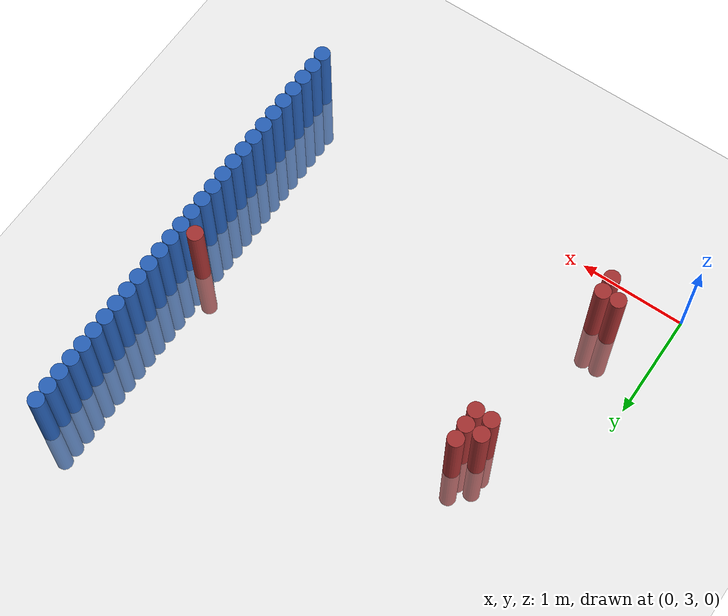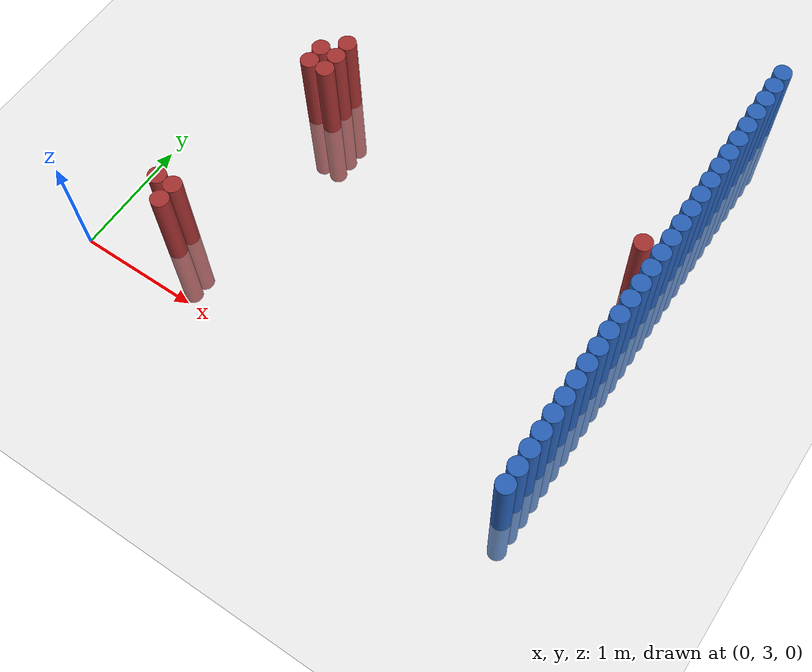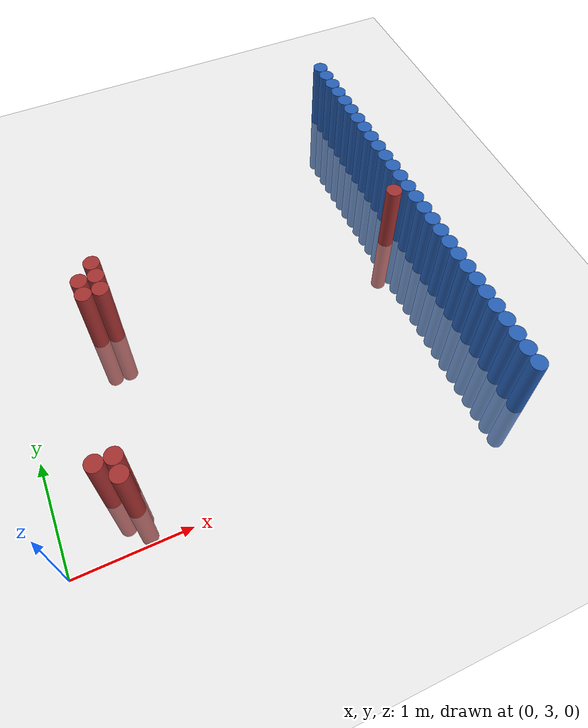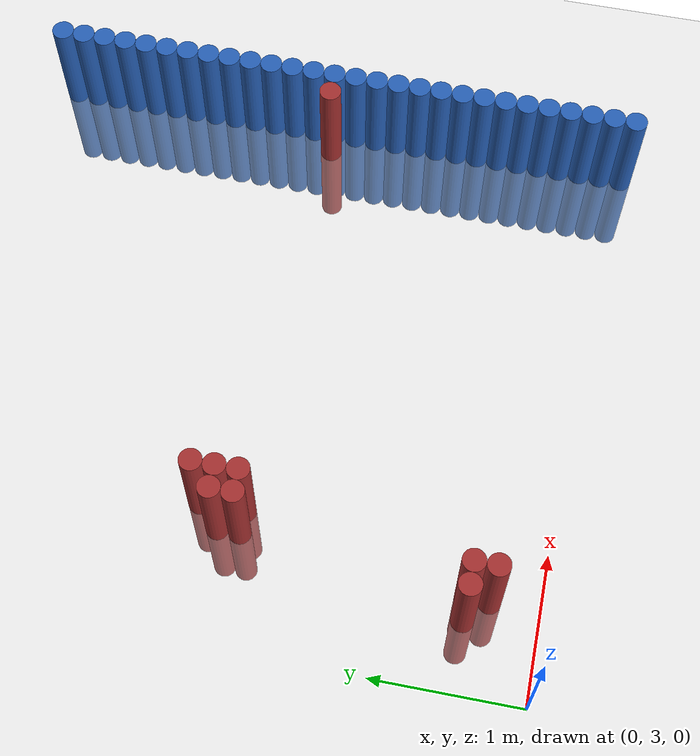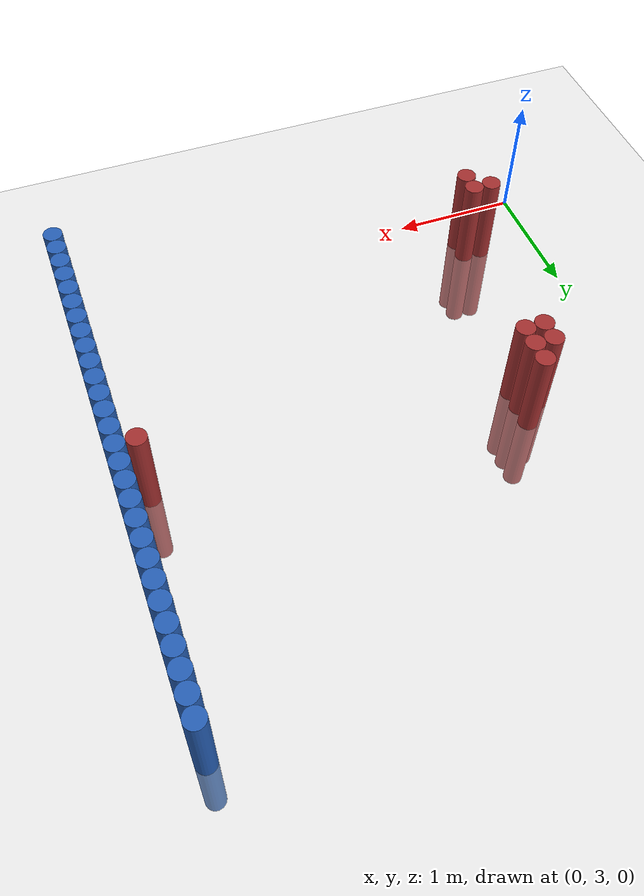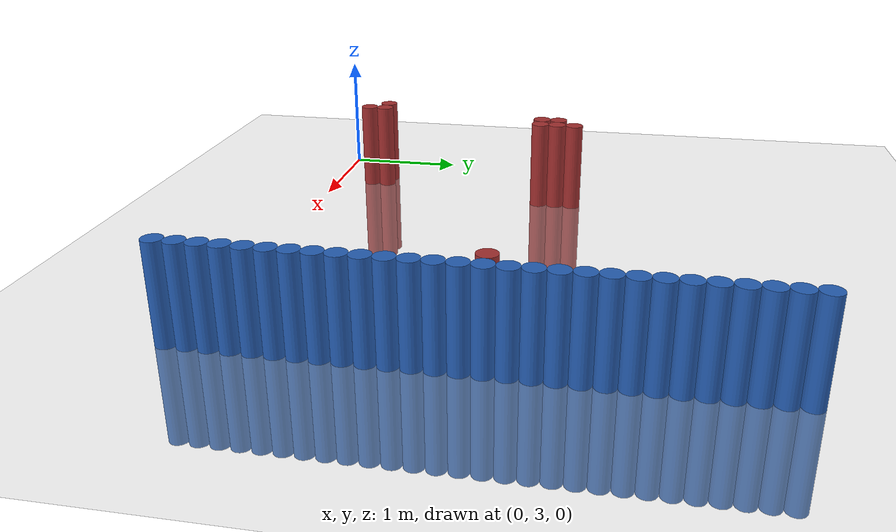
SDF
<sdf version="1.6">
 <world name="default">
  <model name="ground_plane">
   <static>1</static>
   <link name="link">
    <collision name="collision">
     <geometry><plane><normal>0 0 1</normal><size>100 100</size></plane></geometry>
     <surface><friction><ode><mu>100</mu><mu2>50</mu2></ode></friction></surface>
    </collision>
    <visual name="visual">
     <cast_shadows>0</cast_shadows>
     <geometry><plane><normal>0 0 1</normal><size>100 100</size></plane></geometry>
     <material>
      <script><uri>file://media/materials/scripts/gazebo.material</uri><name>Gazebo/Grey</name></script>
     </material>
    </visual>
   </link>
  </model>
  <model name="unit_cylinder_154">
   <static>1</static>
   <pose>3.925000 3.025000 0.000000 0.000000 0.000000 0.000000</pose>
   <link name="link">
    <inertial>
     <mass>1</mass>
     <inertia><ixx>0.145833</ixx><ixy>0</ixy><ixz>0</ixz><iyy>0.145833</iyy><iyz>0</iyz><izz>0.125</izz></inertia>
    </inertial>
    <collision name="collision">
     <geometry><cylinder><radius>0.075000</radius><length>1.5</length></cylinder></geometry>
    </collision>
    <visual name="visual">
     <geometry><cylinder><radius>0.075000</radius><length>1.5</length></cylinder></geometry>
     <material>
      <ambient>0.152000 0.379000 0.720000 1</ambient>
      <diffuse>0.152000 0.379000 0.720000 1</diffuse>
     </material>
     <material>
      <script><name>Gazebo/Grey</name><uri>file://media/materials/scripts/gazebo.material</uri></script>
     </material>
    </visual>
   </link>
  </model>
  <model name="unit_cylinder_156">
   <static>1</static>
   <pose>3.925000 3.175000 0.000000 0.000000 0.000000 0.000000</pose>
   <link name="link">
    <inertial>
     <mass>1</mass>
     <inertia><ixx>0.145833</ixx><ixy>0</ixy><ixz>0</ixz><iyy>0.145833</iyy><iyz>0</iyz><izz>0.125</izz></inertia>
    </inertial>
    <collision name="collision">
     <geometry><cylinder><radius>0.075000</radius><length>1.5</length></cylinder></geometry>
    </collision>
    <visual name="visual">
     <geometry><cylinder><radius>0.075000</radius><length>1.5</length></cylinder></geometry>
     <material>
      <ambient>0.152000 0.379000 0.720000 1</ambient>
      <diffuse>0.152000 0.379000 0.720000 1</diffuse>
     </material>
     <material>
      <script><name>Gazebo/Grey</name><uri>file://media/materials/scripts/gazebo.material</uri></script>
     </material>
    </visual>
   </link>
  </model>
  <model name="unit_cylinder_158">
   <static>1</static>
   <pose>3.925000 3.325000 0.000000 0.000000 0.000000 0.000000</pose>
   <link name="link">
    <inertial>
     <mass>1</mass>
     <inertia><ixx>0.145833</ixx><ixy>0</ixy><ixz>0</ixz><iyy>0.145833</iyy><iyz>0</iyz><izz>0.125</izz></inertia>
    </inertial>
    <collision name="collision">
     <geometry><cylinder><radius>0.075000</radius><length>1.5</length></cylinder></geometry>
    </collision>
    <visual name="visual">
     <geometry><cylinder><radius>0.075000</radius><length>1.5</length></cylinder></geometry>
     <material>
      <ambient>0.152000 0.379000 0.720000 1</ambient>
      <diffuse>0.152000 0.379000 0.720000 1</diffuse>
     </material>
     <material>
      <script><name>Gazebo/Grey</name><uri>file://media/materials/scripts/gazebo.material</uri></script>
     </material>
    </visual>
   </link>
  </model>
  <model name="unit_cylinder_160">
   <static>1</static>
   <pose>3.925000 3.475000 0.000000 0.000000 0.000000 0.000000</pose>
   <link name="link">
    <inertial>
     <mass>1</mass>
     <inertia><ixx>0.145833</ixx><ixy>0</ixy><ixz>0</ixz><iyy>0.145833</iyy><iyz>0</iyz><izz>0.125</izz></inertia>
    </inertial>
    <collision name="collision">
     <geometry><cylinder><radius>0.075000</radius><length>1.5</length></cylinder></geometry>
    </collision>
    <visual name="visual">
     <geometry><cylinder><radius>0.075000</radius><length>1.5</length></cylinder></geometry>
     <material>
      <ambient>0.152000 0.379000 0.720000 1</ambient>
      <diffuse>0.152000 0.379000 0.720000 1</diffuse>
     </material>
     <material>
      <script><name>Gazebo/Grey</name><uri>file://media/materials/scripts/gazebo.material</uri></script>
     </material>
    </visual>
   </link>
  </model>
  <model name="unit_cylinder_162">
   <static>1</static>
   <pose>3.925000 3.625000 0.000000 0.000000 0.000000 0.000000</pose>
   <link name="link">
    <inertial>
     <mass>1</mass>
     <inertia><ixx>0.145833</ixx><ixy>0</ixy><ixz>0</ixz><iyy>0.145833</iyy><iyz>0</iyz><izz>0.125</izz></inertia>
    </inertial>
    <collision name="collision">
     <geometry><cylinder><radius>0.075000</radius><length>1.5</length></cylinder></geometry>
    </collision>
    <visual name="visual">
     <geometry><cylinder><radius>0.075000</radius><length>1.5</length></cylinder></geometry>
     <material>
      <ambient>0.152000 0.379000 0.720000 1</ambient>
      <diffuse>0.152000 0.379000 0.720000 1</diffuse>
     </material>
     <material>
      <script><name>Gazebo/Grey</name><uri>file://media/materials/scripts/gazebo.material</uri></script>
     </material>
    </visual>
   </link>
  </model>
  <model name="unit_cylinder_164">
   <static>1</static>
   <pose>3.925000 3.775000 0.000000 0.000000 0.000000 0.000000</pose>
   <link name="link">
    <inertial>
     <mass>1</mass>
     <inertia><ixx>0.145833</ixx><ixy>0</ixy><ixz>0</ixz><iyy>0.145833</iyy><iyz>0</iyz><izz>0.125</izz></inertia>
    </inertial>
    <collision name="collision">
     <geometry><cylinder><radius>0.075000</radius><length>1.5</length></cylinder></geometry>
    </collision>
    <visual name="visual">
     <geometry><cylinder><radius>0.075000</radius><length>1.5</length></cylinder></geometry>
     <material>
      <ambient>0.152000 0.379000 0.720000 1</ambient>
      <diffuse>0.152000 0.379000 0.720000 1</diffuse>
     </material>
     <material>
      <script><name>Gazebo/Grey</name><uri>file://media/materials/scripts/gazebo.material</uri></script>
     </material>
    </visual>
   </link>
  </model>
  <model name="unit_cylinder_166">
   <static>1</static>
   <pose>3.925000 3.925000 0.000000 0.000000 0.000000 0.000000</pose>
   <link name="link">
    <inertial>
     <mass>1</mass>
     <inertia><ixx>0.145833</ixx><ixy>0</ixy><ixz>0</ixz><iyy>0.145833</iyy><iyz>0</iyz><izz>0.125</izz></inertia>
    </inertial>
    <collision name="collision">
     <geometry><cylinder><radius>0.075000</radius><length>1.5</length></cylinder></geometry>
    </collision>
    <visual name="visual">
     <geometry><cylinder><radius>0.075000</radius><length>1.5</length></cylinder></geometry>
     <material>
      <ambient>0.152000 0.379000 0.720000 1</ambient>
      <diffuse>0.152000 0.379000 0.720000 1</diffuse>
     </material>
     <material>
      <script><name>Gazebo/Grey</name><uri>file://media/materials/scripts/gazebo.material</uri></script>
     </material>
    </visual>
   </link>
  </model>
  <model name="unit_cylinder_168">
   <static>1</static>
   <pose>3.925000 4.075000 0.000000 0.000000 0.000000 0.000000</pose>
   <link name="link">
    <inertial>
     <mass>1</mass>
     <inertia><ixx>0.145833</ixx><ixy>0</ixy><ixz>0</ixz><iyy>0.145833</iyy><iyz>0</iyz><izz>0.125</izz></inertia>
    </inertial>
    <collision name="collision">
     <geometry><cylinder><radius>0.075000</radius><length>1.5</length></cylinder></geometry>
    </collision>
    <visual name="visual">
     <geometry><cylinder><radius>0.075000</radius><length>1.5</length></cylinder></geometry>
     <material>
      <ambient>0.152000 0.379000 0.720000 1</ambient>
      <diffuse>0.152000 0.379000 0.720000 1</diffuse>
     </material>
     <material>
      <script><name>Gazebo/Grey</name><uri>file://media/materials/scripts/gazebo.material</uri></script>
     </material>
    </visual>
   </link>
  </model>
  <model name="unit_cylinder_170">
   <static>1</static>
   <pose>3.925000 4.225000 0.000000 0.000000 0.000000 0.000000</pose>
   <link name="link">
    <inertial>
     <mass>1</mass>
     <inertia><ixx>0.145833</ixx><ixy>0</ixy><ixz>0</ixz><iyy>0.145833</iyy><iyz>0</iyz><izz>0.125</izz></inertia>
    </inertial>
    <collision name="collision">
     <geometry><cylinder><radius>0.075000</radius><length>1.5</length></cylinder></geometry>
    </collision>
    <visual name="visual">
     <geometry><cylinder><radius>0.075000</radius><length>1.5</length></cylinder></geometry>
     <material>
      <ambient>0.152000 0.379000 0.720000 1</ambient>
      <diffuse>0.152000 0.379000 0.720000 1</diffuse>
     </material>
     <material>
      <script><name>Gazebo/Grey</name><uri>file://media/materials/scripts/gazebo.material</uri></script>
     </material>
    </visual>
   </link>
  </model>
  <model name="unit_cylinder_172">
   <static>1</static>
   <pose>3.925000 4.375000 0.000000 0.000000 0.000000 0.000000</pose>
   <link name="link">
    <inertial>
     <mass>1</mass>
     <inertia><ixx>0.145833</ixx><ixy>0</ixy><ixz>0</ixz><iyy>0.145833</iyy><iyz>0</iyz><izz>0.125</izz></inertia>
    </inertial>
    <collision name="collision">
     <geometry><cylinder><radius>0.075000</radius><length>1.5</length></cylinder></geometry>
    </collision>
    <visual name="visual">
     <geometry><cylinder><radius>0.075000</radius><length>1.5</length></cylinder></geometry>
     <material>
      <ambient>0.152000 0.379000 0.720000 1</ambient>
      <diffuse>0.152000 0.379000 0.720000 1</diffuse>
     </material>
     <material>
      <script><name>Gazebo/Grey</name><uri>file://media/materials/scripts/gazebo.material</uri></script>
     </material>
    </visual>
   </link>
  </model>
  <model name="unit_cylinder_174">
   <static>1</static>
   <pose>3.925000 4.525000 0.000000 0.000000 0.000000 0.000000</pose>
   <link name="link">
    <inertial>
     <mass>1</mass>
     <inertia><ixx>0.145833</ixx><ixy>0</ixy><ixz>0</ixz><iyy>0.145833</iyy><iyz>0</iyz><izz>0.125</izz></inertia>
    </inertial>
    <collision name="collision">
     <geometry><cylinder><radius>0.075000</radius><length>1.5</length></cylinder></geometry>
    </collision>
    <visual name="visual">
     <geometry><cylinder><radius>0.075000</radius><length>1.5</length></cylinder></geometry>
     <material>
      <ambient>0.152000 0.379000 0.720000 1</ambient>
      <diffuse>0.152000 0.379000 0.720000 1</diffuse>
     </material>
     <material>
      <script><name>Gazebo/Grey</name><uri>file://media/materials/scripts/gazebo.material</uri></script>
     </material>
    </visual>
   </link>
  </model>
  <model name="unit_cylinder_176">
   <static>1</static>
   <pose>3.925000 4.675000 0.000000 0.000000 0.000000 0.000000</pose>
   <link name="link">
    <inertial>
     <mass>1</mass>
     <inertia><ixx>0.145833</ixx><ixy>0</ixy><ixz>0</ixz><iyy>0.145833</iyy><iyz>0</iyz><izz>0.125</izz></inertia>
    </inertial>
    <collision name="collision">
     <geometry><cylinder><radius>0.075000</radius><length>1.5</length></cylinder></geometry>
    </collision>
    <visual name="visual">
     <geometry><cylinder><radius>0.075000</radius><length>1.5</length></cylinder></geometry>
     <material>
      <ambient>0.152000 0.379000 0.720000 1</ambient>
      <diffuse>0.152000 0.379000 0.720000 1</diffuse>
     </material>
     <material>
      <script><name>Gazebo/Grey</name><uri>file://media/materials/scripts/gazebo.material</uri></script>
     </material>
    </visual>
   </link>
  </model>
  <model name="unit_cylinder_178">
   <static>1</static>
   <pose>3.925000 4.825000 0.000000 0.000000 0.000000 0.000000</pose>
   <link name="link">
    <inertial>
     <mass>1</mass>
     <inertia><ixx>0.145833</ixx><ixy>0</ixy><ixz>0</ixz><iyy>0.145833</iyy><iyz>0</iyz><izz>0.125</izz></inertia>
    </inertial>
    <collision name="collision">
     <geometry><cylinder><radius>0.075000</radius><length>1.5</length></cylinder></geometry>
    </collision>
    <visual name="visual">
     <geometry><cylinder><radius>0.075000</radius><length>1.5</length></cylinder></geometry>
     <material>
      <ambient>0.152000 0.379000 0.720000 1</ambient>
      <diffuse>0.152000 0.379000 0.720000 1</diffuse>
     </material>
     <material>
      <script><name>Gazebo/Grey</name><uri>file://media/materials/scripts/gazebo.material</uri></script>
     </material>
    </visual>
   </link>
  </model>
  <model name="unit_cylinder_180">
   <static>1</static>
   <pose>3.925000 4.975000 0.000000 0.000000 0.000000 0.000000</pose>
   <link name="link">
    <inertial>
     <mass>1</mass>
     <inertia><ixx>0.145833</ixx><ixy>0</ixy><ixz>0</ixz><iyy>0.145833</iyy><iyz>0</iyz><izz>0.125</izz></inertia>
    </inertial>
    <collision name="collision">
     <geometry><cylinder><radius>0.075000</radius><length>1.5</length></cylinder></geometry>
    </collision>
    <visual name="visual">
     <geometry><cylinder><radius>0.075000</radius><length>1.5</length></cylinder></geometry>
     <material>
      <ambient>0.152000 0.379000 0.720000 1</ambient>
      <diffuse>0.152000 0.379000 0.720000 1</diffuse>
     </material>
     <material>
      <script><name>Gazebo/Grey</name><uri>file://media/materials/scripts/gazebo.material</uri></script>
     </material>
    </visual>
   </link>
  </model>
  <model name="unit_cylinder_182">
   <static>1</static>
   <pose>3.925000 5.125000 0.000000 0.000000 0.000000 0.000000</pose>
   <link name="link">
    <inertial>
     <mass>1</mass>
     <inertia><ixx>0.145833</ixx><ixy>0</ixy><ixz>0</ixz><iyy>0.145833</iyy><iyz>0</iyz><izz>0.125</izz></inertia>
    </inertial>
    <collision name="collision">
     <geometry><cylinder><radius>0.075000</radius><length>1.5</length></cylinder></geometry>
    </collision>
    <visual name="visual">
     <geometry><cylinder><radius>0.075000</radius><length>1.5</length></cylinder></geometry>
     <material>
      <ambient>0.152000 0.379000 0.720000 1</ambient>
      <diffuse>0.152000 0.379000 0.720000 1</diffuse>
     </material>
     <material>
      <script><name>Gazebo/Grey</name><uri>file://media/materials/scripts/gazebo.material</uri></script>
     </material>
    </visual>
   </link>
  </model>
  <model name="unit_cylinder_184">
   <static>1</static>
   <pose>3.925000 5.275000 0.000000 0.000000 0.000000 0.000000</pose>
   <link name="link">
    <inertial>
     <mass>1</mass>
     <inertia><ixx>0.145833</ixx><ixy>0</ixy><ixz>0</ixz><iyy>0.145833</iyy><iyz>0</iyz><izz>0.125</izz></inertia>
    </inertial>
    <collision name="collision">
     <geometry><cylinder><radius>0.075000</radius><length>1.5</length></cylinder></geometry>
    </collision>
    <visual name="visual">
     <geometry><cylinder><radius>0.075000</radius><length>1.5</length></cylinder></geometry>
     <material>
      <ambient>0.152000 0.379000 0.720000 1</ambient>
      <diffuse>0.152000 0.379000 0.720000 1</diffuse>
     </material>
     <material>
      <script><name>Gazebo/Grey</name><uri>file://media/materials/scripts/gazebo.material</uri></script>
     </material>
    </visual>
   </link>
  </model>
  <model name="unit_cylinder_186">
   <static>1</static>
   <pose>3.925000 5.425000 0.000000 0.000000 0.000000 0.000000</pose>
   <link name="link">
    <inertial>
     <mass>1</mass>
     <inertia><ixx>0.145833</ixx><ixy>0</ixy><ixz>0</ixz><iyy>0.145833</iyy><iyz>0</iyz><izz>0.125</izz></inertia>
    </inertial>
    <collision name="collision">
     <geometry><cylinder><radius>0.075000</radius><length>1.5</length></cylinder></geometry>
    </collision>
    <visual name="visual">
     <geometry><cylinder><radius>0.075000</radius><length>1.5</length></cylinder></geometry>
     <material>
      <ambient>0.152000 0.379000 0.720000 1</ambient>
      <diffuse>0.152000 0.379000 0.720000 1</diffuse>
     </material>
     <material>
      <script><name>Gazebo/Grey</name><uri>file://media/materials/scripts/gazebo.material</uri></script>
     </material>
    </visual>
   </link>
  </model>
  <model name="unit_cylinder_188">
   <static>1</static>
   <pose>3.925000 5.575000 0.000000 0.000000 0.000000 0.000000</pose>
   <link name="link">
    <inertial>
     <mass>1</mass>
     <inertia><ixx>0.145833</ixx><ixy>0</ixy><ixz>0</ixz><iyy>0.145833</iyy><iyz>0</iyz><izz>0.125</izz></inertia>
    </inertial>
    <collision name="collision">
     <geometry><cylinder><radius>0.075000</radius><length>1.5</length></cylinder></geometry>
    </collision>
    <visual name="visual">
     <geometry><cylinder><radius>0.075000</radius><length>1.5</length></cylinder></geometry>
     <material>
      <ambient>0.152000 0.379000 0.720000 1</ambient>
      <diffuse>0.152000 0.379000 0.720000 1</diffuse>
     </material>
     <material>
      <script><name>Gazebo/Grey</name><uri>file://media/materials/scripts/gazebo.material</uri></script>
     </material>
    </visual>
   </link>
  </model>
  <model name="unit_cylinder_190">
   <static>1</static>
   <pose>3.925000 5.725000 0.000000 0.000000 0.000000 0.000000</pose>
   <link name="link">
    <inertial>
     <mass>1</mass>
     <inertia><ixx>0.145833</ixx><ixy>0</ixy><ixz>0</ixz><iyy>0.145833</iyy><iyz>0</iyz><izz>0.125</izz></inertia>
    </inertial>
    <collision name="collision">
     <geometry><cylinder><radius>0.075000</radius><length>1.5</length></cylinder></geometry>
    </collision>
    <visual name="visual">
     <geometry><cylinder><radius>0.075000</radius><length>1.5</length></cylinder></geometry>
     <material>
      <ambient>0.152000 0.379000 0.720000 1</ambient>
      <diffuse>0.152000 0.379000 0.720000 1</diffuse>
     </material>
     <material>
      <script><name>Gazebo/Grey</name><uri>file://media/materials/scripts/gazebo.material</uri></script>
     </material>
    </visual>
   </link>
  </model>
  <model name="unit_cylinder_192">
   <static>1</static>
   <pose>3.925000 5.875000 0.000000 0.000000 0.000000 0.000000</pose>
   <link name="link">
    <inertial>
     <mass>1</mass>
     <inertia><ixx>0.145833</ixx><ixy>0</ixy><ixz>0</ixz><iyy>0.145833</iyy><iyz>0</iyz><izz>0.125</izz></inertia>
    </inertial>
    <collision name="collision">
     <geometry><cylinder><radius>0.075000</radius><length>1.5</length></cylinder></geometry>
    </collision>
    <visual name="visual">
     <geometry><cylinder><radius>0.075000</radius><length>1.5</length></cylinder></geometry>
     <material>
      <ambient>0.152000 0.379000 0.720000 1</ambient>
      <diffuse>0.152000 0.379000 0.720000 1</diffuse>
     </material>
     <material>
      <script><name>Gazebo/Grey</name><uri>file://media/materials/scripts/gazebo.material</uri></script>
     </material>
    </visual>
   </link>
  </model>
  <model name="unit_cylinder_194">
   <static>1</static>
   <pose>3.925000 6.025000 0.000000 0.000000 0.000000 0.000000</pose>
   <link name="link">
    <inertial>
     <mass>1</mass>
     <inertia><ixx>0.145833</ixx><ixy>0</ixy><ixz>0</ixz><iyy>0.145833</iyy><iyz>0</iyz><izz>0.125</izz></inertia>
    </inertial>
    <collision name="collision">
     <geometry><cylinder><radius>0.075000</radius><length>1.5</length></cylinder></geometry>
    </collision>
    <visual name="visual">
     <geometry><cylinder><radius>0.075000</radius><length>1.5</length></cylinder></geometry>
     <material>
      <ambient>0.152000 0.379000 0.720000 1</ambient>
      <diffuse>0.152000 0.379000 0.720000 1</diffuse>
     </material>
     <material>
      <script><name>Gazebo/Grey</name><uri>file://media/materials/scripts/gazebo.material</uri></script>
     </material>
    </visual>
   </link>
  </model>
  <model name="unit_cylinder_196">
   <static>1</static>
   <pose>3.925000 6.175000 0.000000 0.000000 0.000000 0.000000</pose>
   <link name="link">
    <inertial>
     <mass>1</mass>
     <inertia><ixx>0.145833</ixx><ixy>0</ixy><ixz>0</ixz><iyy>0.145833</iyy><iyz>0</iyz><izz>0.125</izz></inertia>
    </inertial>
    <collision name="collision">
     <geometry><cylinder><radius>0.075000</radius><length>1.5</length></cylinder></geometry>
    </collision>
    <visual name="visual">
     <geometry><cylinder><radius>0.075000</radius><length>1.5</length></cylinder></geometry>
     <material>
      <ambient>0.152000 0.379000 0.720000 1</ambient>
      <diffuse>0.152000 0.379000 0.720000 1</diffuse>
     </material>
     <material>
      <script><name>Gazebo/Grey</name><uri>file://media/materials/scripts/gazebo.material</uri></script>
     </material>
    </visual>
   </link>
  </model>
  <model name="unit_cylinder_198">
   <static>1</static>
   <pose>3.925000 6.325000 0.000000 0.000000 0.000000 0.000000</pose>
   <link name="link">
    <inertial>
     <mass>1</mass>
     <inertia><ixx>0.145833</ixx><ixy>0</ixy><ixz>0</ixz><iyy>0.145833</iyy><iyz>0</iyz><izz>0.125</izz></inertia>
    </inertial>
    <collision name="collision">
     <geometry><cylinder><radius>0.075000</radius><length>1.5</length></cylinder></geometry>
    </collision>
    <visual name="visual">
     <geometry><cylinder><radius>0.075000</radius><length>1.5</length></cylinder></geometry>
     <material>
      <ambient>0.152000 0.379000 0.720000 1</ambient>
      <diffuse>0.152000 0.379000 0.720000 1</diffuse>
     </material>
     <material>
      <script><name>Gazebo/Grey</name><uri>file://media/materials/scripts/gazebo.material</uri></script>
     </material>
    </visual>
   </link>
  </model>
  <model name="unit_cylinder_200">
   <static>1</static>
   <pose>3.925000 6.475000 0.000000 0.000000 0.000000 0.000000</pose>
   <link name="link">
    <inertial>
     <mass>1</mass>
     <inertia><ixx>0.145833</ixx><ixy>0</ixy><ixz>0</ixz><iyy>0.145833</iyy><iyz>0</iyz><izz>0.125</izz></inertia>
    </inertial>
    <collision name="collision">
     <geometry><cylinder><radius>0.075000</radius><length>1.5</length></cylinder></geometry>
    </collision>
    <visual name="visual">
     <geometry><cylinder><radius>0.075000</radius><length>1.5</length></cylinder></geometry>
     <material>
      <ambient>0.152000 0.379000 0.720000 1</ambient>
      <diffuse>0.152000 0.379000 0.720000 1</diffuse>
     </material>
     <material>
      <script><name>Gazebo/Grey</name><uri>file://media/materials/scripts/gazebo.material</uri></script>
     </material>
    </visual>
   </link>
  </model>
  <model name="unit_cylinder_202">
   <static>1</static>
   <pose>3.925000 6.625000 0.000000 0.000000 0.000000 0.000000</pose>
   <link name="link">
    <inertial>
     <mass>1</mass>
     <inertia><ixx>0.145833</ixx><ixy>0</ixy><ixz>0</ixz><iyy>0.145833</iyy><iyz>0</iyz><izz>0.125</izz></inertia>
    </inertial>
    <collision name="collision">
     <geometry><cylinder><radius>0.075000</radius><length>1.5</length></cylinder></geometry>
    </collision>
    <visual name="visual">
     <geometry><cylinder><radius>0.075000</radius><length>1.5</length></cylinder></geometry>
     <material>
      <ambient>0.152000 0.379000 0.720000 1</ambient>
      <diffuse>0.152000 0.379000 0.720000 1</diffuse>
     </material>
     <material>
      <script><name>Gazebo/Grey</name><uri>file://media/materials/scripts/gazebo.material</uri></script>
     </material>
    </visual>
   </link>
  </model>
  <model name="unit_cylinder_204">
   <static>1</static>
   <pose>3.925000 6.775000 0.000000 0.000000 0.000000 0.000000</pose>
   <link name="link">
    <inertial>
     <mass>1</mass>
     <inertia><ixx>0.145833</ixx><ixy>0</ixy><ixz>0</ixz><iyy>0.145833</iyy><iyz>0</iyz><izz>0.125</izz></inertia>
    </inertial>
    <collision name="collision">
     <geometry><cylinder><radius>0.075000</radius><length>1.5</length></cylinder></geometry>
    </collision>
    <visual name="visual">
     <geometry><cylinder><radius>0.075000</radius><length>1.5</length></cylinder></geometry>
     <material>
      <ambient>0.152000 0.379000 0.720000 1</ambient>
      <diffuse>0.152000 0.379000 0.720000 1</diffuse>
     </material>
     <material>
      <script><name>Gazebo/Grey</name><uri>file://media/materials/scripts/gazebo.material</uri></script>
     </material>
    </visual>
   </link>
  </model>
  <model name="unit_cylinder_206">
   <static>1</static>
   <pose>3.925000 6.925000 0.000000 0.000000 0.000000 0.000000</pose>
   <link name="link">
    <inertial>
     <mass>1</mass>
     <inertia><ixx>0.145833</ixx><ixy>0</ixy><ixz>0</ixz><iyy>0.145833</iyy><iyz>0</iyz><izz>0.125</izz></inertia>
    </inertial>
    <collision name="collision">
     <geometry><cylinder><radius>0.075000</radius><length>1.5</length></cylinder></geometry>
    </collision>
    <visual name="visual">
     <geometry><cylinder><radius>0.075000</radius><length>1.5</length></cylinder></geometry>
     <material>
      <ambient>0.152000 0.379000 0.720000 1</ambient>
      <diffuse>0.152000 0.379000 0.720000 1</diffuse>
     </material>
     <material>
      <script><name>Gazebo/Grey</name><uri>file://media/materials/scripts/gazebo.material</uri></script>
     </material>
    </visual>
   </link>
  </model>
  <model name="unit_cylinder_297">
   <static>1</static>
   <pose>0.475000 3.475000 0.000000 0.000000 0.000000 0.000000</pose>
   <link name="link">
    <inertial>
     <mass>1</mass>
     <inertia><ixx>0.145833</ixx><ixy>0</ixy><ixz>0</ixz><iyy>0.145833</iyy><iyz>0</iyz><izz>0.125</izz></inertia>
    </inertial>
    <collision name="collision">
     <geometry><cylinder><radius>0.075000</radius><length>1.5</length></cylinder></geometry>
    </collision>
    <visual name="visual">
     <geometry><cylinder><radius>0.075000</radius><length>1.5</length></cylinder></geometry>
     <material>
      <ambient>0.648000 0.192000 0.192000 1</ambient>
      <diffuse>0.648000 0.192000 0.192000 1</diffuse>
     </material>
     <material>
      <script><name>Gazebo/Grey</name><uri>file://media/materials/scripts/gazebo.material</uri></script>
     </material>
    </visual>
   </link>
  </model>
  <model name="unit_cylinder_298">
   <static>1</static>
   <pose>0.625000 3.325000 0.000000 0.000000 0.000000 0.000000</pose>
   <link name="link">
    <inertial>
     <mass>1</mass>
     <inertia><ixx>0.145833</ixx><ixy>0</ixy><ixz>0</ixz><iyy>0.145833</iyy><iyz>0</iyz><izz>0.125</izz></inertia>
    </inertial>
    <collision name="collision">
     <geometry><cylinder><radius>0.075000</radius><length>1.5</length></cylinder></geometry>
    </collision>
    <visual name="visual">
     <geometry><cylinder><radius>0.075000</radius><length>1.5</length></cylinder></geometry>
     <material>
      <ambient>0.648000 0.192000 0.192000 1</ambient>
      <diffuse>0.648000 0.192000 0.192000 1</diffuse>
     </material>
     <material>
      <script><name>Gazebo/Grey</name><uri>file://media/materials/scripts/gazebo.material</uri></script>
     </material>
    </visual>
   </link>
  </model>
  <model name="unit_cylinder_299">
   <static>1</static>
   <pose>0.625000 3.475000 0.000000 0.000000 0.000000 0.000000</pose>
   <link name="link">
    <inertial>
     <mass>1</mass>
     <inertia><ixx>0.145833</ixx><ixy>0</ixy><ixz>0</ixz><iyy>0.145833</iyy><iyz>0</iyz><izz>0.125</izz></inertia>
    </inertial>
    <collision name="collision">
     <geometry><cylinder><radius>0.075000</radius><length>1.5</length></cylinder></geometry>
    </collision>
    <visual name="visual">
     <geometry><cylinder><radius>0.075000</radius><length>1.5</length></cylinder></geometry>
     <material>
      <ambient>0.648000 0.192000 0.192000 1</ambient>
      <diffuse>0.648000 0.192000 0.192000 1</diffuse>
     </material>
     <material>
      <script><name>Gazebo/Grey</name><uri>file://media/materials/scripts/gazebo.material</uri></script>
     </material>
    </visual>
   </link>
  </model>
  <model name="unit_cylinder_300">
   <static>1</static>
   <pose>0.775000 4.975000 0.000000 0.000000 0.000000 0.000000</pose>
   <link name="link">
    <inertial>
     <mass>1</mass>
     <inertia><ixx>0.145833</ixx><ixy>0</ixy><ixz>0</ixz><iyy>0.145833</iyy><iyz>0</iyz><izz>0.125</izz></inertia>
    </inertial>
    <collision name="collision">
     <geometry><cylinder><radius>0.075000</radius><length>1.5</length></cylinder></geometry>
    </collision>
    <visual name="visual">
     <geometry><cylinder><radius>0.075000</radius><length>1.5</length></cylinder></geometry>
     <material>
      <ambient>0.648000 0.192000 0.192000 1</ambient>
      <diffuse>0.648000 0.192000 0.192000 1</diffuse>
     </material>
     <material>
      <script><name>Gazebo/Grey</name><uri>file://media/materials/scripts/gazebo.material</uri></script>
     </material>
    </visual>
   </link>
  </model>
  <model name="unit_cylinder_301">
   <static>1</static>
   <pose>0.775000 5.125000 0.000000 0.000000 0.000000 0.000000</pose>
   <link name="link">
    <inertial>
     <mass>1</mass>
     <inertia><ixx>0.145833</ixx><ixy>0</ixy><ixz>0</ixz><iyy>0.145833</iyy><iyz>0</iyz><izz>0.125</izz></inertia>
    </inertial>
    <collision name="collision">
     <geometry><cylinder><radius>0.075000</radius><length>1.5</length></cylinder></geometry>
    </collision>
    <visual name="visual">
     <geometry><cylinder><radius>0.075000</radius><length>1.5</length></cylinder></geometry>
     <material>
      <ambient>0.648000 0.192000 0.192000 1</ambient>
      <diffuse>0.648000 0.192000 0.192000 1</diffuse>
     </material>
     <material>
      <script><name>Gazebo/Grey</name><uri>file://media/materials/scripts/gazebo.material</uri></script>
     </material>
    </visual>
   </link>
  </model>
  <model name="unit_cylinder_302">
   <static>1</static>
   <pose>0.925000 4.975000 0.000000 0.000000 0.000000 0.000000</pose>
   <link name="link">
    <inertial>
     <mass>1</mass>
     <inertia><ixx>0.145833</ixx><ixy>0</ixy><ixz>0</ixz><iyy>0.145833</iyy><iyz>0</iyz><izz>0.125</izz></inertia>
    </inertial>
    <collision name="collision">
     <geometry><cylinder><radius>0.075000</radius><length>1.5</length></cylinder></geometry>
    </collision>
    <visual name="visual">
     <geometry><cylinder><radius>0.075000</radius><length>1.5</length></cylinder></geometry>
     <material>
      <ambient>0.648000 0.192000 0.192000 1</ambient>
      <diffuse>0.648000 0.192000 0.192000 1</diffuse>
     </material>
     <material>
      <script><name>Gazebo/Grey</name><uri>file://media/materials/scripts/gazebo.material</uri></script>
     </material>
    </visual>
   </link>
  </model>
  <model name="unit_cylinder_303">
   <static>1</static>
   <pose>0.925000 5.125000 0.000000 0.000000 0.000000 0.000000</pose>
   <link name="link">
    <inertial>
     <mass>1</mass>
     <inertia><ixx>0.145833</ixx><ixy>0</ixy><ixz>0</ixz><iyy>0.145833</iyy><iyz>0</iyz><izz>0.125</izz></inertia>
    </inertial>
    <collision name="collision">
     <geometry><cylinder><radius>0.075000</radius><length>1.5</length></cylinder></geometry>
    </collision>
    <visual name="visual">
     <geometry><cylinder><radius>0.075000</radius><length>1.5</length></cylinder></geometry>
     <material>
      <ambient>0.648000 0.192000 0.192000 1</ambient>
      <diffuse>0.648000 0.192000 0.192000 1</diffuse>
     </material>
     <material>
      <script><name>Gazebo/Grey</name><uri>file://media/materials/scripts/gazebo.material</uri></script>
     </material>
    </visual>
   </link>
  </model>
  <model name="unit_cylinder_304">
   <static>1</static>
   <pose>0.925000 5.275000 0.000000 0.000000 0.000000 0.000000</pose>
   <link name="link">
    <inertial>
     <mass>1</mass>
     <inertia><ixx>0.145833</ixx><ixy>0</ixy><ixz>0</ixz><iyy>0.145833</iyy><iyz>0</iyz><izz>0.125</izz></inertia>
    </inertial>
    <collision name="collision">
     <geometry><cylinder><radius>0.075000</radius><length>1.5</length></cylinder></geometry>
    </collision>
    <visual name="visual">
     <geometry><cylinder><radius>0.075000</radius><length>1.5</length></cylinder></geometry>
     <material>
      <ambient>0.648000 0.192000 0.192000 1</ambient>
      <diffuse>0.648000 0.192000 0.192000 1</diffuse>
     </material>
     <material>
      <script><name>Gazebo/Grey</name><uri>file://media/materials/scripts/gazebo.material</uri></script>
     </material>
    </visual>
   </link>
  </model>
  <model name="unit_cylinder_326">
   <static>1</static>
   <pose>3.775000 4.975000 0.000000 0.000000 0.000000 0.000000</pose>
   <link name="link">
    <inertial>
     <mass>1</mass>
     <inertia><ixx>0.145833</ixx><ixy>0</ixy><ixz>0</ixz><iyy>0.145833</iyy><iyz>0</iyz><izz>0.125</izz></inertia>
    </inertial>
    <collision name="collision">
     <geometry><cylinder><radius>0.075000</radius><length>1.5</length></cylinder></geometry>
    </collision>
    <visual name="visual">
     <geometry><cylinder><radius>0.075000</radius><length>1.5</length></cylinder></geometry>
     <material>
      <ambient>0.648000 0.192000 0.192000 1</ambient>
      <diffuse>0.648000 0.192000 0.192000 1</diffuse>
     </material>
     <material>
      <script><name>Gazebo/Grey</name><uri>file://media/materials/scripts/gazebo.material</uri></script>
     </material>
    </visual>
   </link>
  </model>
  <model name="unit_cylinder_359">
   <static>1</static>
   <pose>3.925000 2.875000 0.000000 0.000000 0.000000 0.000000</pose>
   <link name="link">
    <inertial>
     <mass>1</mass>
     <inertia><ixx>0.145833</ixx><ixy>0</ixy><ixz>0</ixz><iyy>0.145833</iyy><iyz>0</iyz><izz>0.125</izz></inertia>
    </inertial>
    <collision name="collision">
     <geometry><cylinder><radius>0.075000</radius><length>1.5</length></cylinder></geometry>
    </collision>
    <visual name="visual">
     <geometry><cylinder><radius>0.075000</radius><length>1.5</length></cylinder></geometry>
     <material>
      <ambient>0.152000 0.379000 0.720000 1</ambient>
      <diffuse>0.152000 0.379000 0.720000 1</diffuse>
     </material>
     <material>
      <script><name>Gazebo/Grey</name><uri>file://media/materials/scripts/gazebo.material</uri></script>
     </material>
    </visual>
   </link>
  </model>
  <model name="unit_cylinder_360">
   <static>1</static>
   <pose>3.925000 3.025000 0.000000 0.000000 0.000000 0.000000</pose>
   <link name="link">
    <inertial>
     <mass>1</mass>
     <inertia><ixx>0.145833</ixx><ixy>0</ixy><ixz>0</ixz><iyy>0.145833</iyy><iyz>0</iyz><izz>0.125</izz></inertia>
    </inertial>
    <collision name="collision">
     <geometry><cylinder><radius>0.075000</radius><length>1.5</length></cylinder></geometry>
    </collision>
    <visual name="visual">
     <geometry><cylinder><radius>0.075000</radius><length>1.5</length></cylinder></geometry>
     <material>
      <ambient>0.152000 0.379000 0.720000 1</ambient>
      <diffuse>0.152000 0.379000 0.720000 1</diffuse>
     </material>
     <material>
      <script><name>Gazebo/Grey</name><uri>file://media/materials/scripts/gazebo.material</uri></script>
     </material>
    </visual>
   </link>
  </model>
  <model name="unit_cylinder_361">
   <static>1</static>
   <pose>3.925000 3.175000 0.000000 0.000000 0.000000 0.000000</pose>
   <link name="link">
    <inertial>
     <mass>1</mass>
     <inertia><ixx>0.145833</ixx><ixy>0</ixy><ixz>0</ixz><iyy>0.145833</iyy><iyz>0</iyz><izz>0.125</izz></inertia>
    </inertial>
    <collision name="collision">
     <geometry><cylinder><radius>0.075000</radius><length>1.5</length></cylinder></geometry>
    </collision>
    <visual name="visual">
     <geometry><cylinder><radius>0.075000</radius><length>1.5</length></cylinder></geometry>
     <material>
      <ambient>0.152000 0.379000 0.720000 1</ambient>
      <diffuse>0.152000 0.379000 0.720000 1</diffuse>
     </material>
     <material>
      <script><name>Gazebo/Grey</name><uri>file://media/materials/scripts/gazebo.material</uri></script>
     </material>
    </visual>
   </link>
  </model>
  <model name="unit_cylinder_362">
   <static>1</static>
   <pose>3.925000 3.325000 0.000000 0.000000 0.000000 0.000000</pose>
   <link name="link">
    <inertial>
     <mass>1</mass>
     <inertia><ixx>0.145833</ixx><ixy>0</ixy><ixz>0</ixz><iyy>0.145833</iyy><iyz>0</iyz><izz>0.125</izz></inertia>
    </inertial>
    <collision name="collision">
     <geometry><cylinder><radius>0.075000</radius><length>1.5</length></cylinder></geometry>
    </collision>
    <visual name="visual">
     <geometry><cylinder><radius>0.075000</radius><length>1.5</length></cylinder></geometry>
     <material>
      <ambient>0.152000 0.379000 0.720000 1</ambient>
      <diffuse>0.152000 0.379000 0.720000 1</diffuse>
     </material>
     <material>
      <script><name>Gazebo/Grey</name><uri>file://media/materials/scripts/gazebo.material</uri></script>
     </material>
    </visual>
   </link>
  </model>
  <model name="unit_cylinder_363">
   <static>1</static>
   <pose>3.925000 3.475000 0.000000 0.000000 0.000000 0.000000</pose>
   <link name="link">
    <inertial>
     <mass>1</mass>
     <inertia><ixx>0.145833</ixx><ixy>0</ixy><ixz>0</ixz><iyy>0.145833</iyy><iyz>0</iyz><izz>0.125</izz></inertia>
    </inertial>
    <collision name="collision">
     <geometry><cylinder><radius>0.075000</radius><length>1.5</length></cylinder></geometry>
    </collision>
    <visual name="visual">
     <geometry><cylinder><radius>0.075000</radius><length>1.5</length></cylinder></geometry>
     <material>
      <ambient>0.152000 0.379000 0.720000 1</ambient>
      <diffuse>0.152000 0.379000 0.720000 1</diffuse>
     </material>
     <material>
      <script><name>Gazebo/Grey</name><uri>file://media/materials/scripts/gazebo.material</uri></script>
     </material>
    </visual>
   </link>
  </model>
  <model name="unit_cylinder_364">
   <static>1</static>
   <pose>3.925000 3.625000 0.000000 0.000000 0.000000 0.000000</pose>
   <link name="link">
    <inertial>
     <mass>1</mass>
     <inertia><ixx>0.145833</ixx><ixy>0</ixy><ixz>0</ixz><iyy>0.145833</iyy><iyz>0</iyz><izz>0.125</izz></inertia>
    </inertial>
    <collision name="collision">
     <geometry><cylinder><radius>0.075000</radius><length>1.5</length></cylinder></geometry>
    </collision>
    <visual name="visual">
     <geometry><cylinder><radius>0.075000</radius><length>1.5</length></cylinder></geometry>
     <material>
      <ambient>0.152000 0.379000 0.720000 1</ambient>
      <diffuse>0.152000 0.379000 0.720000 1</diffuse>
     </material>
     <material>
      <script><name>Gazebo/Grey</name><uri>file://media/materials/scripts/gazebo.material</uri></script>
     </material>
    </visual>
   </link>
  </model>
  <model name="unit_cylinder_365">
   <static>1</static>
   <pose>3.925000 3.775000 0.000000 0.000000 0.000000 0.000000</pose>
   <link name="link">
    <inertial>
     <mass>1</mass>
     <inertia><ixx>0.145833</ixx><ixy>0</ixy><ixz>0</ixz><iyy>0.145833</iyy><iyz>0</iyz><izz>0.125</izz></inertia>
    </inertial>
    <collision name="collision">
     <geometry><cylinder><radius>0.075000</radius><length>1.5</length></cylinder></geometry>
    </collision>
    <visual name="visual">
     <geometry><cylinder><radius>0.075000</radius><length>1.5</length></cylinder></geometry>
     <material>
      <ambient>0.152000 0.379000 0.720000 1</ambient>
      <diffuse>0.152000 0.379000 0.720000 1</diffuse>
     </material>
     <material>
      <script><name>Gazebo/Grey</name><uri>file://media/materials/scripts/gazebo.material</uri></script>
     </material>
    </visual>
   </link>
  </model>
  <model name="unit_cylinder_366">
   <static>1</static>
   <pose>3.925000 3.925000 0.000000 0.000000 0.000000 0.000000</pose>
   <link name="link">
    <inertial>
     <mass>1</mass>
     <inertia><ixx>0.145833</ixx><ixy>0</ixy><ixz>0</ixz><iyy>0.145833</iyy><iyz>0</iyz><izz>0.125</izz></inertia>
    </inertial>
    <collision name="collision">
     <geometry><cylinder><radius>0.075000</radius><length>1.5</length></cylinder></geometry>
    </collision>
    <visual name="visual">
     <geometry><cylinder><radius>0.075000</radius><length>1.5</length></cylinder></geometry>
     <material>
      <ambient>0.152000 0.379000 0.720000 1</ambient>
      <diffuse>0.152000 0.379000 0.720000 1</diffuse>
     </material>
     <material>
      <script><name>Gazebo/Grey</name><uri>file://media/materials/scripts/gazebo.material</uri></script>
     </material>
    </visual>
   </link>
  </model>
  <model name="unit_cylinder_367">
   <static>1</static>
   <pose>3.925000 4.075000 0.000000 0.000000 0.000000 0.000000</pose>
   <link name="link">
    <inertial>
     <mass>1</mass>
     <inertia><ixx>0.145833</ixx><ixy>0</ixy><ixz>0</ixz><iyy>0.145833</iyy><iyz>0</iyz><izz>0.125</izz></inertia>
    </inertial>
    <collision name="collision">
     <geometry><cylinder><radius>0.075000</radius><length>1.5</length></cylinder></geometry>
    </collision>
    <visual name="visual">
     <geometry><cylinder><radius>0.075000</radius><length>1.5</length></cylinder></geometry>
     <material>
      <ambient>0.152000 0.379000 0.720000 1</ambient>
      <diffuse>0.152000 0.379000 0.720000 1</diffuse>
     </material>
     <material>
      <script><name>Gazebo/Grey</name><uri>file://media/materials/scripts/gazebo.material</uri></script>
     </material>
    </visual>
   </link>
  </model>
  <model name="unit_cylinder_368">
   <static>1</static>
   <pose>3.925000 4.225000 0.000000 0.000000 0.000000 0.000000</pose>
   <link name="link">
    <inertial>
     <mass>1</mass>
     <inertia><ixx>0.145833</ixx><ixy>0</ixy><ixz>0</ixz><iyy>0.145833</iyy><iyz>0</iyz><izz>0.125</izz></inertia>
    </inertial>
    <collision name="collision">
     <geometry><cylinder><radius>0.075000</radius><length>1.5</length></cylinder></geometry>
    </collision>
    <visual name="visual">
     <geometry><cylinder><radius>0.075000</radius><length>1.5</length></cylinder></geometry>
     <material>
      <ambient>0.152000 0.379000 0.720000 1</ambient>
      <diffuse>0.152000 0.379000 0.720000 1</diffuse>
     </material>
     <material>
      <script><name>Gazebo/Grey</name><uri>file://media/materials/scripts/gazebo.material</uri></script>
     </material>
    </visual>
   </link>
  </model>
  <model name="unit_cylinder_369">
   <static>1</static>
   <pose>3.925000 4.375000 0.000000 0.000000 0.000000 0.000000</pose>
   <link name="link">
    <inertial>
     <mass>1</mass>
     <inertia><ixx>0.145833</ixx><ixy>0</ixy><ixz>0</ixz><iyy>0.145833</iyy><iyz>0</iyz><izz>0.125</izz></inertia>
    </inertial>
    <collision name="collision">
     <geometry><cylinder><radius>0.075000</radius><length>1.5</length></cylinder></geometry>
    </collision>
    <visual name="visual">
     <geometry><cylinder><radius>0.075000</radius><length>1.5</length></cylinder></geometry>
     <material>
      <ambient>0.152000 0.379000 0.720000 1</ambient>
      <diffuse>0.152000 0.379000 0.720000 1</diffuse>
     </material>
     <material>
      <script><name>Gazebo/Grey</name><uri>file://media/materials/scripts/gazebo.material</uri></script>
     </material>
    </visual>
   </link>
  </model>
  <model name="unit_cylinder_370">
   <static>1</static>
   <pose>3.925000 4.525000 0.000000 0.000000 0.000000 0.000000</pose>
   <link name="link">
    <inertial>
     <mass>1</mass>
     <inertia><ixx>0.145833</ixx><ixy>0</ixy><ixz>0</ixz><iyy>0.145833</iyy><iyz>0</iyz><izz>0.125</izz></inertia>
    </inertial>
    <collision name="collision">
     <geometry><cylinder><radius>0.075000</radius><length>1.5</length></cylinder></geometry>
    </collision>
    <visual name="visual">
     <geometry><cylinder><radius>0.075000</radius><length>1.5</length></cylinder></geometry>
     <material>
      <ambient>0.152000 0.379000 0.720000 1</ambient>
      <diffuse>0.152000 0.379000 0.720000 1</diffuse>
     </material>
     <material>
      <script><name>Gazebo/Grey</name><uri>file://media/materials/scripts/gazebo.material</uri></script>
     </material>
    </visual>
   </link>
  </model>
  <model name="unit_cylinder_371">
   <static>1</static>
   <pose>3.925000 4.675000 0.000000 0.000000 0.000000 0.000000</pose>
   <link name="link">
    <inertial>
     <mass>1</mass>
     <inertia><ixx>0.145833</ixx><ixy>0</ixy><ixz>0</ixz><iyy>0.145833</iyy><iyz>0</iyz><izz>0.125</izz></inertia>
    </inertial>
    <collision name="collision">
     <geometry><cylinder><radius>0.075000</radius><length>1.5</length></cylinder></geometry>
    </collision>
    <visual name="visual">
     <geometry><cylinder><radius>0.075000</radius><length>1.5</length></cylinder></geometry>
     <material>
      <ambient>0.152000 0.379000 0.720000 1</ambient>
      <diffuse>0.152000 0.379000 0.720000 1</diffuse>
     </material>
     <material>
      <script><name>Gazebo/Grey</name><uri>file://media/materials/scripts/gazebo.material</uri></script>
     </material>
    </visual>
   </link>
  </model>
  <model name="unit_cylinder_372">
   <static>1</static>
   <pose>3.925000 4.825000 0.000000 0.000000 0.000000 0.000000</pose>
   <link name="link">
    <inertial>
     <mass>1</mass>
     <inertia><ixx>0.145833</ixx><ixy>0</ixy><ixz>0</ixz><iyy>0.145833</iyy><iyz>0</iyz><izz>0.125</izz></inertia>
    </inertial>
    <collision name="collision">
     <geometry><cylinder><radius>0.075000</radius><length>1.5</length></cylinder></geometry>
    </collision>
    <visual name="visual">
     <geometry><cylinder><radius>0.075000</radius><length>1.5</length></cylinder></geometry>
     <material>
      <ambient>0.152000 0.379000 0.720000 1</ambient>
      <diffuse>0.152000 0.379000 0.720000 1</diffuse>
     </material>
     <material>
      <script><name>Gazebo/Grey</name><uri>file://media/materials/scripts/gazebo.material</uri></script>
     </material>
    </visual>
   </link>
  </model>
  <model name="unit_cylinder_373">
   <static>1</static>
   <pose>3.925000 4.975000 0.000000 0.000000 0.000000 0.000000</pose>
   <link name="link">
    <inertial>
     <mass>1</mass>
     <inertia><ixx>0.145833</ixx><ixy>0</ixy><ixz>0</ixz><iyy>0.145833</iyy><iyz>0</iyz><izz>0.125</izz></inertia>
    </inertial>
    <collision name="collision">
     <geometry><cylinder><radius>0.075000</radius><length>1.5</length></cylinder></geometry>
    </collision>
    <visual name="visual">
     <geometry><cylinder><radius>0.075000</radius><length>1.5</length></cylinder></geometry>
     <material>
      <ambient>0.152000 0.379000 0.720000 1</ambient>
      <diffuse>0.152000 0.379000 0.720000 1</diffuse>
     </material>
     <material>
      <script><name>Gazebo/Grey</name><uri>file://media/materials/scripts/gazebo.material</uri></script>
     </material>
    </visual>
   </link>
  </model>
  <model name="unit_cylinder_374">
   <static>1</static>
   <pose>3.925000 5.125000 0.000000 0.000000 0.000000 0.000000</pose>
   <link name="link">
    <inertial>
     <mass>1</mass>
     <inertia><ixx>0.145833</ixx><ixy>0</ixy><ixz>0</ixz><iyy>0.145833</iyy><iyz>0</iyz><izz>0.125</izz></inertia>
    </inertial>
    <collision name="collision">
     <geometry><cylinder><radius>0.075000</radius><length>1.5</length></cylinder></geometry>
    </collision>
    <visual name="visual">
     <geometry><cylinder><radius>0.075000</radius><length>1.5</length></cylinder></geometry>
     <material>
      <ambient>0.152000 0.379000 0.720000 1</ambient>
      <diffuse>0.152000 0.379000 0.720000 1</diffuse>
     </material>
     <material>
      <script><name>Gazebo/Grey</name><uri>file://media/materials/scripts/gazebo.material</uri></script>
     </material>
    </visual>
   </link>
  </model>
  <model name="unit_cylinder_375">
   <static>1</static>
   <pose>3.925000 5.275000 0.000000 0.000000 0.000000 0.000000</pose>
   <link name="link">
    <inertial>
     <mass>1</mass>
     <inertia><ixx>0.145833</ixx><ixy>0</ixy><ixz>0</ixz><iyy>0.145833</iyy><iyz>0</iyz><izz>0.125</izz></inertia>
    </inertial>
    <collision name="collision">
     <geometry><cylinder><radius>0.075000</radius><length>1.5</length></cylinder></geometry>
    </collision>
    <visual name="visual">
     <geometry><cylinder><radius>0.075000</radius><length>1.5</length></cylinder></geometry>
     <material>
      <ambient>0.152000 0.379000 0.720000 1</ambient>
      <diffuse>0.152000 0.379000 0.720000 1</diffuse>
     </material>
     <material>
      <script><name>Gazebo/Grey</name><uri>file://media/materials/scripts/gazebo.material</uri></script>
     </material>
    </visual>
   </link>
  </model>
  <model name="unit_cylinder_376">
   <static>1</static>
   <pose>3.925000 5.425000 0.000000 0.000000 0.000000 0.000000</pose>
   <link name="link">
    <inertial>
     <mass>1</mass>
     <inertia><ixx>0.145833</ixx><ixy>0</ixy><ixz>0</ixz><iyy>0.145833</iyy><iyz>0</iyz><izz>0.125</izz></inertia>
    </inertial>
    <collision name="collision">
     <geometry><cylinder><radius>0.075000</radius><length>1.5</length></cylinder></geometry>
    </collision>
    <visual name="visual">
     <geometry><cylinder><radius>0.075000</radius><length>1.5</length></cylinder></geometry>
     <material>
      <ambient>0.152000 0.379000 0.720000 1</ambient>
      <diffuse>0.152000 0.379000 0.720000 1</diffuse>
     </material>
     <material>
      <script><name>Gazebo/Grey</name><uri>file://media/materials/scripts/gazebo.material</uri></script>
     </material>
    </visual>
   </link>
  </model>
 </world>
</sdf>
